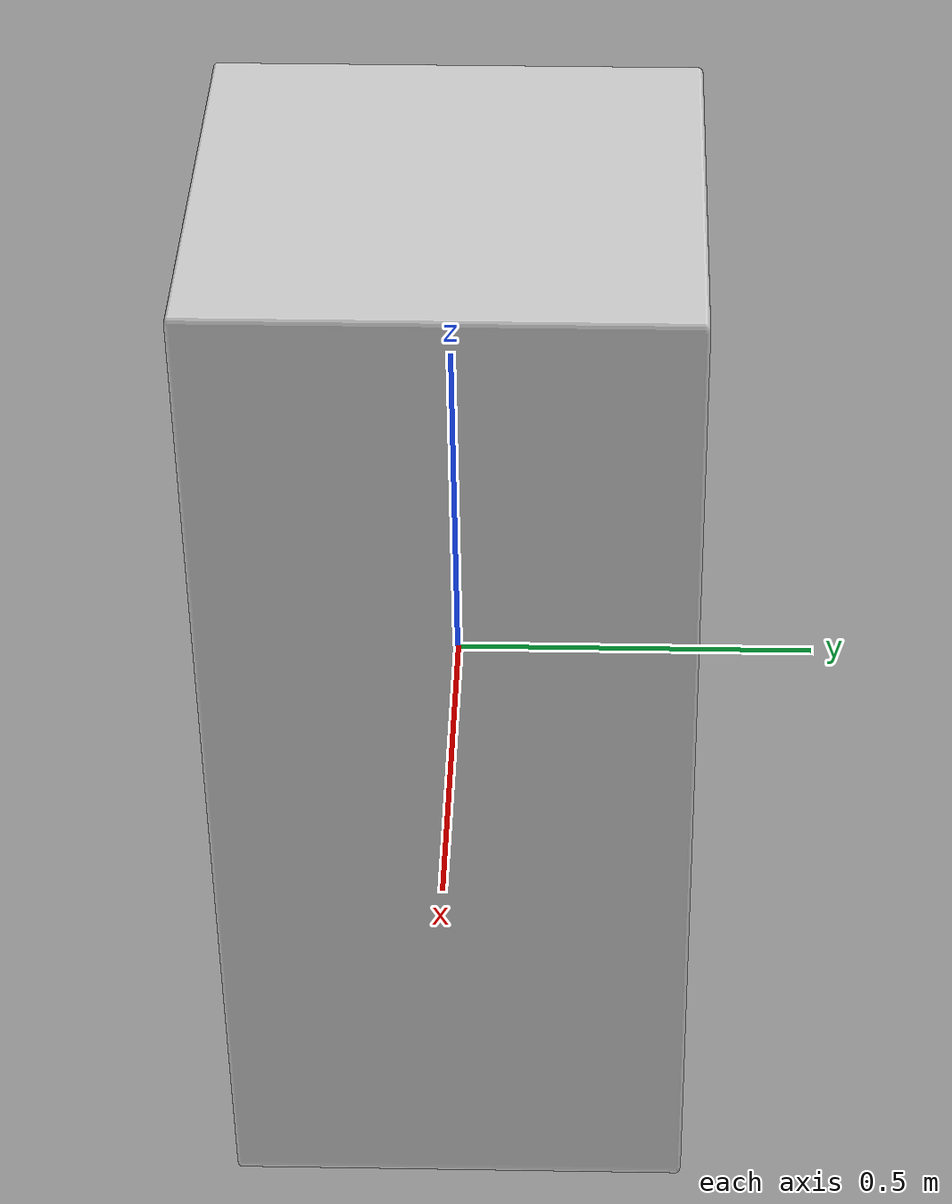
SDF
<?xml version="1.0"?>
<sdf version="1.5">
  <model name="fridge_model">
<static>
true
</static>
    <link name="fridge_link">
      <inertial>
        <mass>0.390</mass>
        <inertia>
          <ixx>0.00058</ixx>
          <ixy>0</ixy>
          <ixz>0</ixz>
          <iyy>0.00058</iyy>
          <iyz>0</iyz>
          <izz>0.00019</izz>
        </inertia>
      </inertial>
      <collision name="fridge_collision">
        <geometry>
          <mesh>
            <uri>model://fridge/meshes/Fridge.dae</uri>
          </mesh>
        </geometry>
        <surface>
          <friction>
            <ode>
              <mu>1.0</mu>
              <mu2>1.0</mu2>
            </ode>
          </friction>
          <contact>
            <ode>
              <kp>10000000.0</kp>
              <kd>1.0</kd>
              <min_depth>0.001</min_depth>
              <max_vel>0.1</max_vel>
            </ode>
          </contact>
        </surface>
      </collision>
      <visual name="fridge_visual">
        <geometry>
          <mesh>
            <uri>model://fridge/meshes/Fridge.dae</uri>
          </mesh>
        </geometry>
      </visual>
    </link>
  </model>
</sdf>
